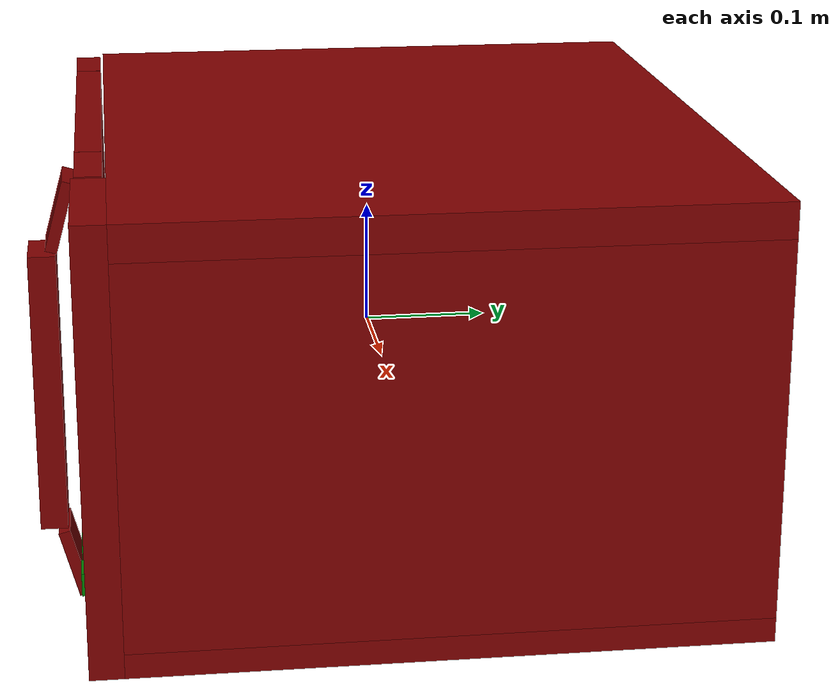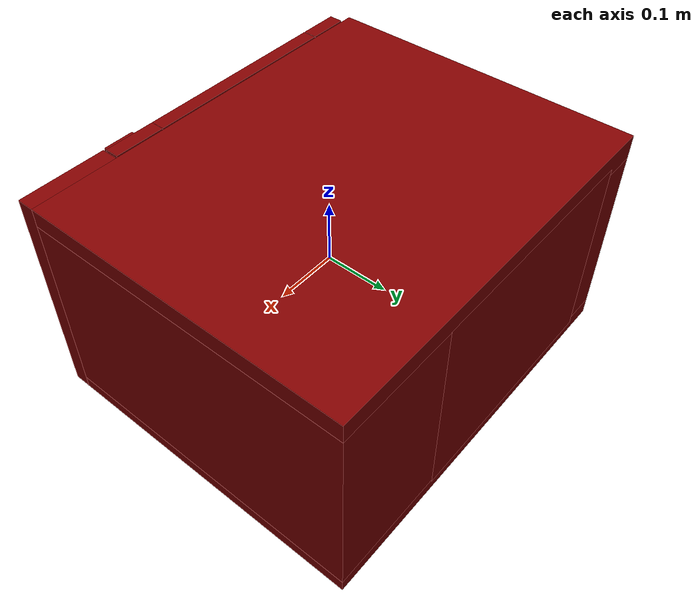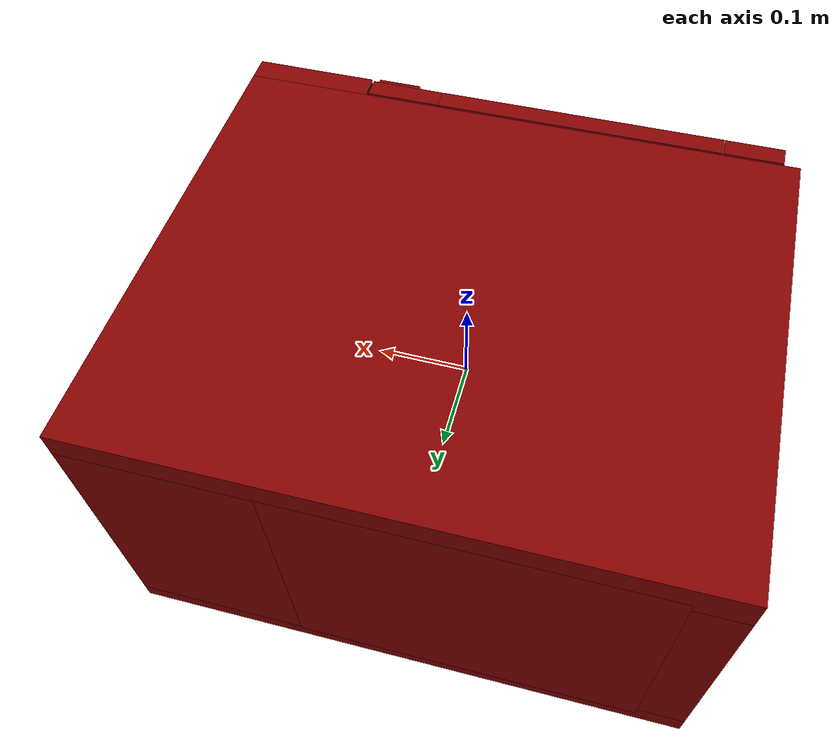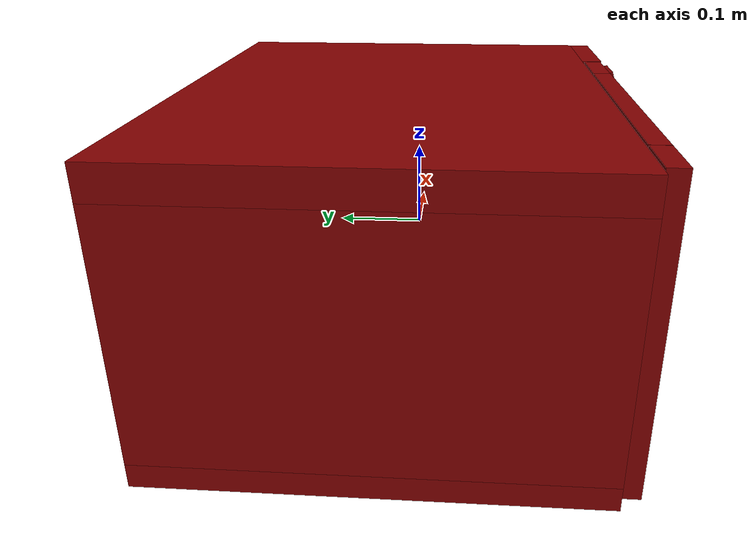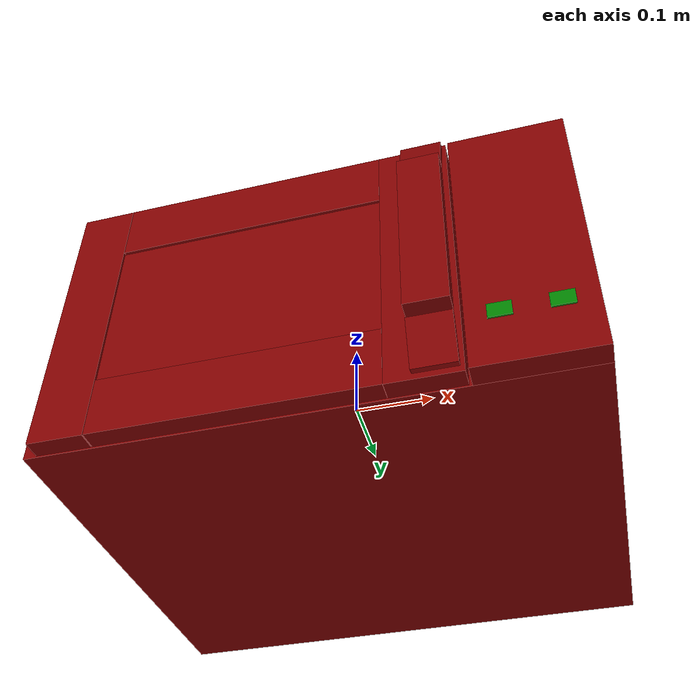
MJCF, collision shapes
<?xml version='1.0' encoding='UTF-8'?>
<mujoco model="model">
  <option timestep="0.002" gravity="0.0 0.0 -9.81"/>
  <compiler angle="radian"/>
  <asset>
    <mesh file="visuals/door.obj" name="door_vis"/>
    <mesh file="visuals/door_Clear.obj" name="door_Clear_vis"/>
    <mesh file="visuals/Body001.obj" name="Body001_vis"/>
    <mesh file="visuals/Disc001.obj" name="Disc001_vis"/>
    <texture file="visuals/T_BC001.png" name="Body001_material" type="2d"/>
    <material name="Body001_material" rgba="1 1 1 1.0" texture="Body001_material" shininess="0.4472135901451111" specular="5"/>
    <texture file="visuals/T_BC001.png" name="door_material" type="2d"/>
    <material name="door_material" rgba="1 1 1 1.0" texture="door_material" shininess="0.4472135901451111" specular="0.3103448502657381"/>
    <material name="door_Clear_material" rgba="0.10878883302211761 0.10878883302211761 0.10878883302211761 0.800000011920929" shininess="0.4472135901451111" specular="0.3103448502657381"/>
    <texture file="visuals/T_BC001.png" name="Disc001_material" type="2d"/>
    <material name="Disc001_material" rgba="1 1 1 1.0" texture="Disc001_material" shininess="0.4472135901451111" specular="5"/>
  </asset>
  <default>
    <default class="visual">
      <geom conaffinity="0" contype="0" group="1" type="mesh"/>
    </default>
    <default class="collision">
      <geom group="0" rgba="0.5 0 0 0.5"/>
    </default>
    <default class="spawn">
      <geom group="0" rgba="1 1 1 0.5" contype="0" conaffinity="0"/>
      <site group="0" rgba="1 1 1 0.5"/>
    </default>
    <default class="region">
      <geom group="1" conaffinity="0" contype="0" rgba="0 1 0 0"/>
    </default>
  </default>
  <worldbody>
    <body>
      <body name="object">
        <geom class="collision" type="cylinder" pos="-0.07085079 -0.03527134 -0.13615966" size="0.14736369252204895 0.0014016532804816961" quat="1.0 0.0 0.0 0.0" name="tray" rgba="0 1 0 0.5"/>
        <geom class="collision" type="box" pos="0.27030492 -0.24541244 -0.10796241" size="0.012578919529914856 0.0012121606850996614 0.009054339490830898" quat="1.0 0.0 0.0 0.0" name="stop_button" rgba="0.0 0.5 0 0.5"/>
        <geom class="collision" type="box" pos="0.20892870 -0.24541244 -0.10796241" size="0.012578919529914856 0.0012121606850996614 0.009054339490830898" quat="1.0 0.0 0.0 0.0" name="start_button" rgba="0.0 0.5 0 0.5"/>
        <geom mesh="Body001_vis" type="mesh" solimp="0.998 0.998 0.001" solref="0.001 1" friction="0.95 0.3 0.1" class="visual" material="Body001_material"/>
        <geom class="collision" type="box" pos="-0.00000001 0.03099239 0.15597421" size="0.3065568208694458 0.24860014021396637 0.019025634974241257" quat="1.0 0.0 0.0 0.0"/>
        <geom class="collision" type="box" pos="0.23990947 -0.23078818 0.00000000" size="0.06664837896823883 0.013179413042962551 0.17499884963035583" quat="1.0 0.0 0.0 0.0"/>
        <geom class="collision" type="box" pos="-0.00000002 0.03099236 -0.16100261" size="0.30655717849731445 0.2486005276441574 0.013997342437505722" quat="1.0 0.0 0.0 0.0"/>
        <geom class="collision" type="box" pos="0.21236762 0.03099244 -0.00434069" size="0.09419012069702148 0.248600572347641 0.1509064882993698" quat="1.0 0.0 0.0 0.0"/>
        <geom class="collision" type="box" pos="-0.28039116 0.03099230 -0.00502834" size="0.026166925206780434 0.24860090017318726 0.1419769525527954" quat="1.0 0.0 0.0 0.0"/>
        <geom class="collision" type="box" pos="-0.06916813 0.21315152 -0.00614392" size="0.18734495341777802 0.06644221395254135 0.1535394936800003" quat="1.0 0.0 0.0 0.0"/>
        <body name="door">
          <joint axis="0.0 0.0 1.0" pos="-0.29321122 -0.23203794 0.00000001" limited="true" name="microjoint" range="-1.5707963267948966 0.0" type="hinge" damping="1" frictionloss="1" armature=".01" stiffness="0.05"/>
          <geom mesh="door_vis" type="mesh" solimp="0.998 0.998 0.001" solref="0.001 1" friction="0.95 0.3 0.1" class="visual" material="door_material"/>
          <geom class="collision" type="box" pos="-0.25773573 -0.23088031 -0.00002675" size="0.031772516667842865 0.010803190059959888 0.17527179419994354" quat="1.0 0.0 0.0 0.0"/>
          <geom class="collision" type="box" pos="-0.06749555 -0.23691825 -0.00191502" size="0.1662762612104416 0.0011737904278561473 0.11264043301343918" quat="1.0 0.0 0.0 0.0"/>
          <geom class="collision" type="box" pos="0.13020214 -0.23088031 -0.00002675" size="0.040074169635772705 0.010803190059959888 0.17527179419994354" quat="1.0 0.0 0.0 0.0"/>
          <geom class="collision" type="box" pos="-0.06761017 -0.23088031 0.13786225" size="0.1575537770986557 0.010803190059959888 0.03738280385732651" quat="1.0 0.0 0.0 0.0" name="door_main"/>
          <geom class="collision" type="box" pos="-0.06761017 -0.23088031 -0.13833609" size="0.1575537770986557 0.010803190059959888 0.03666391223669052" quat="1.0 0.0 0.0 0.0"/>
          <geom class="collision" type="box" pos="0.14230964 -0.26860959 0.00054513" size="0.023645726963877678 0.010694717057049274 0.11195584386587143" quat="1.0 0.0 0.0 0.0" name="door_handle_main"/>
          <geom class="collision" type="box" pos="0.14230964 -0.25373221 0.14285389" size="0.023645726963877678 0.0047135488130152225 0.028124691918492317" quat="0.9909031391143799 -0.13457699120044708 2.988214116521699e-17 1.41090044818185e-23"/>
          <geom class="collision" type="box" pos="0.14230964 -0.25373221 -0.14227402" size="0.023645726963877678 0.0047135488130152225 0.028124691918492317" quat="0.9909031391143799 0.13457699120044708 -2.988214116521699e-17 1.369917546433808e-23"/>
          <body name="door_Clear">
            <geom mesh="door_Clear_vis" type="mesh" solimp="0.998 0.998 0.001" solref="0.001 1" friction="0.95 0.3 0.1" class="visual" material="door_Clear_material"/>
            <geom class="collision" type="box" pos="-0.06749555 -0.23691825 -0.00191502" size="0.1662762612104416 0.0011737904278561473 0.11264043301343918" quat="1.0 0.0 0.0 0.0"/>
          </body>
        </body>
        <body name="Disc001">
          <joint axis="0.0 0.0 1.0" pos="-0.07037711 -0.03614391 -0.12562315" limited="false" name="Disc001_joint" range="0 360" type="hinge" damping="1" frictionloss="1" armature=".01" stiffness="0.05"/>
          <geom mesh="Disc001_vis" type="mesh" solimp="0.998 0.998 0.001" solref="0.001 1" friction="0.95 0.3 0.1" class="visual" material="Disc001_material"/>
          <geom class="collision" type="cylinder" pos="-0.07085079 -0.03527134 -0.14347894" size="0.14736369252204895 0.003240163205191493" quat="1.0 0.0 0.0 0.0"/>
        </body>
        <geom class="region" name="reg_int" type="box" pos="-0.06840194 -0.035521910000000004 -0.0015095650000000044" size="0.18124045 0.1773423 0.134248345"/>
        <geom class="region" name="reg_main" type="box" pos="-1.0000000022492017e-08 0.017560169999999986 0.0" size="0.30755816 0.26303367 0.17600001"/>
      <geom class="region" name="reg_tray" type="cylinder" pos="-0.07085079 -0.03527134 -0.0010096133597591456" size="0.14736369252204895 0.13274839335975913"/></body>
    </body>
  </worldbody>
  <actuator>
    <motor name="microjoint_actuator" joint="microjoint" gear="10"/>
    <motor name="Disc001_joint_actuator" joint="Disc001_joint" gear="10"/>
  </actuator>
</mujoco>
